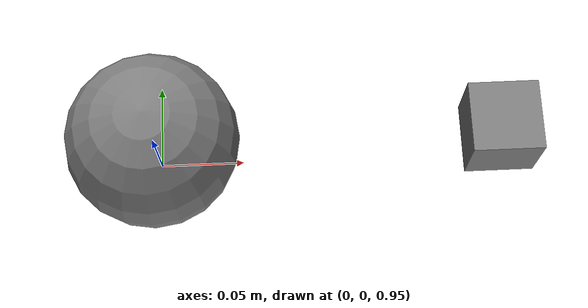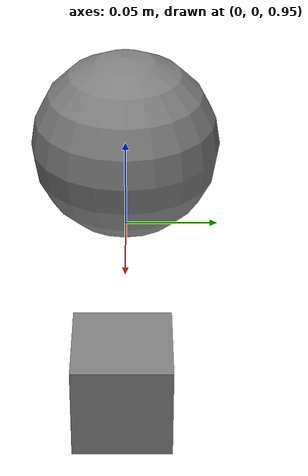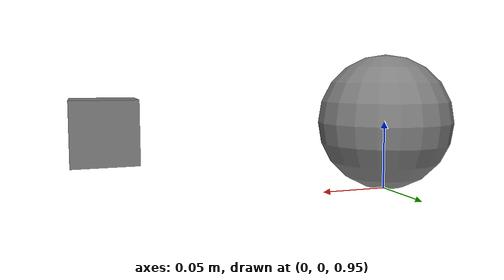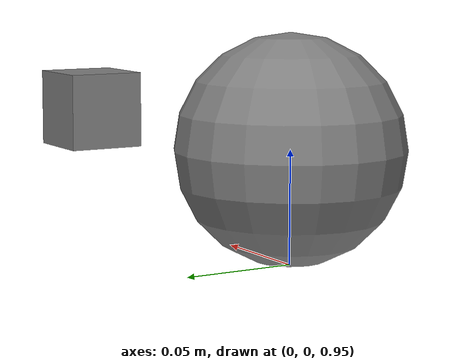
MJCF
<mujoco model="mocap_and_custom">
  <compiler angle="radian"/>
  <worldbody>
    <body name="target" mocap="true" pos="0.2 0 1">
      <geom name="target_g" type="box" size="0.02 0.02 0.02" contype="0" conaffinity="0"/>
    </body>
    <body name="payload" pos="0 0 1">
      <freejoint/>
      <geom name="payload_g" type="sphere" size="0.05"/>
      <site name="payload_s" size="0.01"/>
    </body>
  </worldbody>
  <equality>
    <weld name="hold" body1="payload" body2="target"/>
  </equality>
  <custom>
    <numeric name="gain_table" data="1.0 2.0 3.0 4.0"/>
    <numeric name="scalar" data="0.5"/>
    <text name="note" data="pathdiff-fixture"/>
    <tuple name="pair">
      <element objtype="body" objname="payload"/>
      <element objtype="site" objname="payload_s"/>
    </tuple>
  </custom>
</mujoco>
